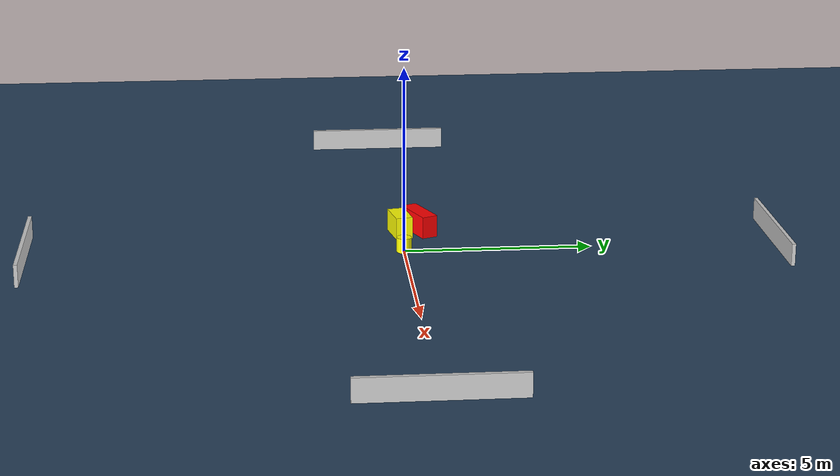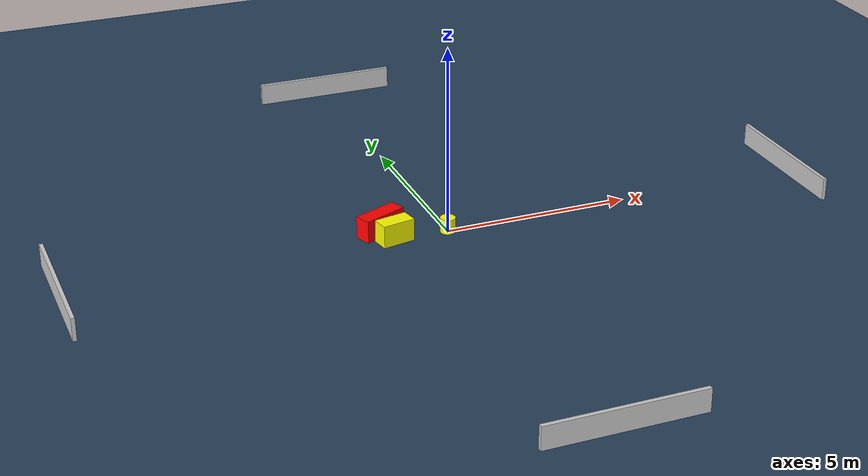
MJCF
<?xml version="1.0" ?>
<mujoco model="generated_environment">
  <option timestep="0.01" integrator="RK4" cone="elliptic"/>
  <default>
    <geom density="1"/>
  </default>
  <asset>
    <texture builtin="gradient" height="3072" name="skybox" rgb1="0.3 0.5 0.7" rgb2="0 0 0" type="skybox" width="512"/>
    <texture builtin="checker" height="300" name="groundplane" rgb1="0.2 0.3 0.4" rgb2="0.1 0.2 0.3" type="2d" width="300"/>
    <material name="groundplane" reflectance="0.2" texrepeat="5 5" texture="groundplane"/>
  </asset>
  <worldbody>
    <light dir="0 0 -1" directional="true" pos="0 0 1.5"/>
    <geom condim="3" friction="0.5 0.005 0.001" material="groundplane" name="floor" pos="0 0 0" size="0 0 0.05" type="plane"/>
    <body name="walls">
      <geom name="wall_1" condim="4" pos="-10.0 0.0 0.3" rgba="0.800000011920929 0.800000011920929 0.800000011920929 1.0" size="0.05 2.0 0.3" type="box"/>
      <geom name="wall_2" condim="4" pos="10.0 0.0 0.3" rgba="0.800000011920929 0.800000011920929 0.800000011920929 1.0" size="0.05 2.0 0.3" type="box"/>
      <geom name="wall_3" condim="4" pos="0.0 -10.0 0.3" rgba="0.800000011920929 0.800000011920929 0.800000011920929 1.0" size="2.0 0.05 0.3" type="box"/>
      <geom name="wall_4" condim="4" pos="0.0 10.0 0.3" rgba="0.800000011920929 0.800000011920929 0.800000011920929 1.0" size="2.0 0.05 0.3" type="box"/>
    </body>
    <body name="robot">
      <joint name="joint_x" type="slide" pos="0 0 0" axis="1 0 0"/>
      <joint name="joint_y" type="slide" pos="0 0 0" axis="0 1 0"/>
      <geom name="robot" type="cylinder" pos="0.0 0.0 0.2" size="0.2 0.2 0.0" mass="5.0" friction="1.0 0.005 0.0001" condim="4" rgba="1.0 1.0 0.0 1.0"/>
    </body>
    <body name="obstacle_1_movable">
      <geom name="obstacle_1_movable" condim="4" pos="-1.4503011977147608 0.006581085735898026 0.3" euler="0 0 280.9944479119092" friction="0.0 0.005 0.001" rgba="1.0 1.0 0.0 1.0" size="0.22852908199080746 0.4438510146919382 0.3" type="box" mass="0.1"/>
      <joint type="free"/>
    </body>
    <body name="obstacle_2_static">
      <geom name="obstacle_2_static" condim="4" pos="-1.6444131469595074 0.5507717494553369 0.3" euler="0 0 22.960153027194053" friction="0.0 0.005 0.001" rgba="1.0 0.0 0.0 1.0" size="0.6131026326815596 0.21850156667355786 0.3" type="box"/>
    </body>
  </worldbody>
  <actuator>
    <motor name="actuator_x" joint="joint_x" gear="1" ctrlrange="-1 1"/>
    <motor name="actuator_y" joint="joint_y" gear="1" ctrlrange="-1 1"/>
  </actuator>
</mujoco>
